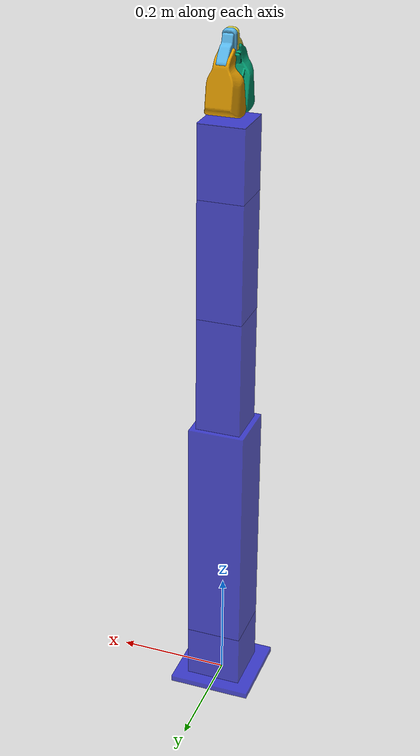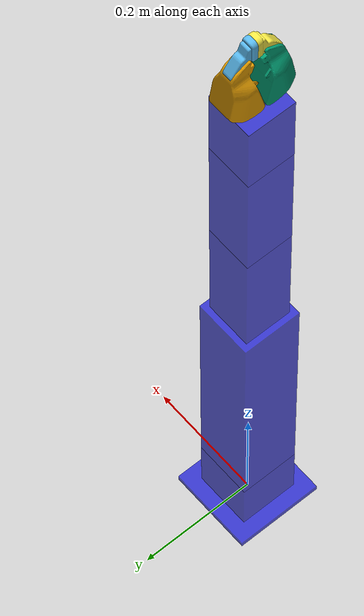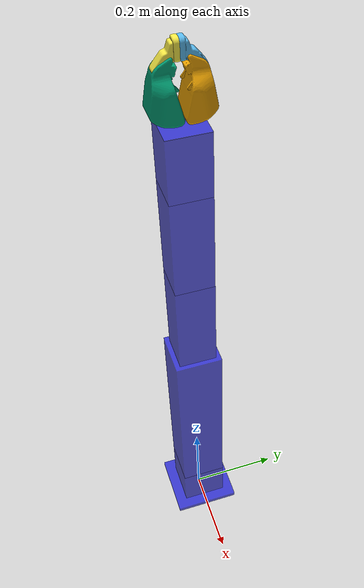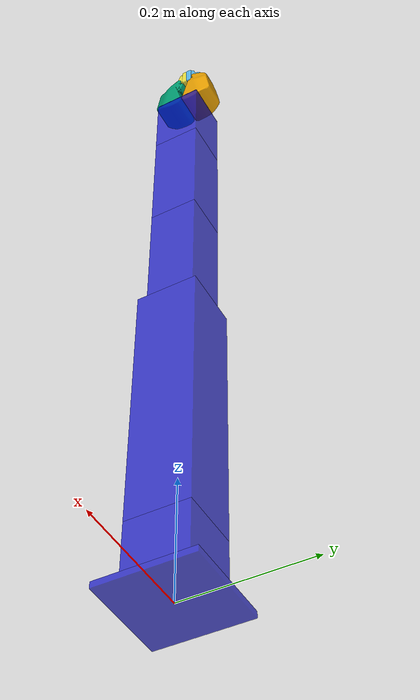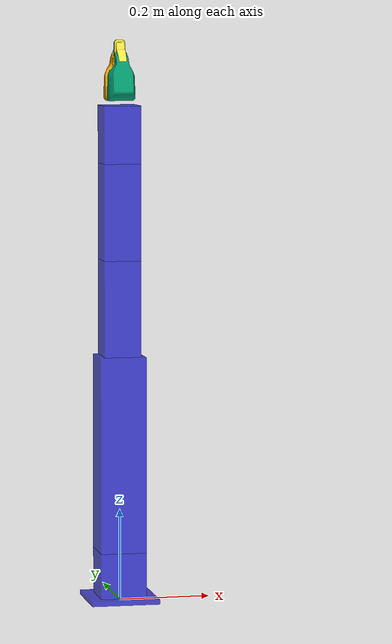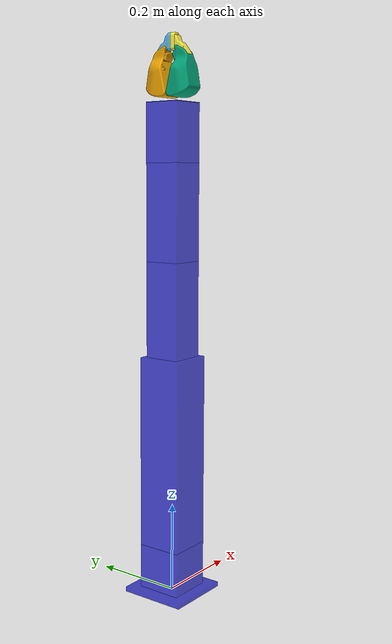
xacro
<?xml version="1.0" encoding="utf-8"?>
<robot xmlns:xacro="http://www.ros.org/wiki/xacro" name="frost">
  <xacro:include filename="$(find frost_robot_arm)/urdf/frost_arm.xacro"/>
  <xacro:include filename="$(find frost_robot_arm)/urdf/hand.xacro"/>
  <xacro:hand ns="frost_arm" right_xyz="0 0.01 0.02" left_xyz="0 -0.01 0.02" rpy="0 ${-pi/2} 0" connected_to="link_5"/>
</robot>

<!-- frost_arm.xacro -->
<robot name="frost" xmlns:xacro="http://www.ros.org/wiki/xacro">

  <material name="blue">
    <color rgba="0 0 0.8 0.7"/>
  </material>
  <material name="red">
    <color rgba="0.8 0 0 1"/>
  </material>

  <xacro:macro name="cube_inertial" params="width height depth mass *origin">
    <inertial>
      <mass value="${mass}" />
      <xacro:insert_block name="origin" />
      <inertia ixx="${0.0833333 * mass * (height * height + depth * depth)}" ixy="0.0" ixz="0.0"
        iyy="${0.0833333 * mass * (width * width + depth * depth)}" iyz="0.0"
        izz="${0.0833333 * mass * (width * width + height * height)}" />
    </inertial>
  </xacro:macro>

  <xacro:property name="link_base_mass" value="0.500" />
  <xacro:property name="link_0_mass" value="2.515" />
  <xacro:property name="link_1_mass" value="5.214" />
  <xacro:property name="link_2_mass" value="2.581" />
  <xacro:property name="link_3_mass" value="2.581" />
  <xacro:property name="link_4_mass" value="1.643" />
  <xacro:property name="link_5_mass" value="0.200" />

  <link name="world" />

  <joint name="world_joint" type="fixed">
    <parent link= "world" />
    <child link= "link_base" />
    <origin xyz="0.0 0.0 0.0" rpy="0.0 0.0 0.0" />
  </joint>

  <link name="link_base">
    <visual>
      <geometry>
	      <box size="0.15 0.15 0.01"/>
      </geometry>
      <origin rpy="0 0 0" xyz="0 0 0.005"/>
      <material name="blue"/>
    </visual>
    <collision>
      <geometry>
	      <box size="0.15 0.15 0.01"/>
      </geometry>
      <material name="red"/>
      <origin rpy="0 0 0" xyz="0 0 0.0025"/>
    </collision>
    <xacro:cube_inertial width="0.08" depth="0.08" height="0.001" mass="${link_base_mass}">
      <origin xyz="0.0 0.0 0.0" rpy="0 0 0" />
    </xacro:cube_inertial>
  </link>

  <link name="link_0">
    <visual>
      <geometry>
	      <box size="0.1 0.1 0.1"/>
      </geometry>
      <origin rpy="0 0 0" xyz="0 0 0.05"/>
      <material name="blue"/>
    </visual>
    <collision>
      <geometry>
	      <box size="0.1 0.1 0.1"/>
      </geometry>
      <material name="red"/>
      <origin rpy="0 0 0" xyz="0 0 0.05"/>
    </collision>
    <xacro:cube_inertial width="0.08" depth="0.08" height="0.001" mass="${link_0_mass}">
      <origin xyz="0.0 0.0 0.0" rpy="0 0 0" />
    </xacro:cube_inertial>
  </link>

  <joint name="joint0" type="revolute">
    <axis xyz="0 0 1"/>
    <origin rpy="0 0 0" xyz="0 0 0.01"/>
    <parent link="link_base"/>
    <child link="link_0"/>
    <limit effort="87" lower="-3.141592654" upper="3.141592654" velocity="2.1750"/>
    <inertial>
      <mass value="1.0"/>
      <inertia ixx="0.015" iyy="0.0375" izz="0.0375" ixy="0" ixz="0" iyz="0"/>
    </inertial>
  </joint>

  <link name="link_1">
    <visual>
      <geometry>
	      <box size="0.1 0.1 0.43"/>
      </geometry>
      <origin rpy="0 0 0" xyz="0 0 0.215"/>
      <material name="blue"/>
    </visual>
    <collision>
      <geometry>
	      <box size="0.1 0.1 0.35"/>
      </geometry>
      <material name="red"/>
      <origin rpy="0 0 0" xyz="0 0 0.215"/>
    </collision>
     <xacro:cube_inertial width="0.08" depth="0.08" height="0.001" mass="${link_1_mass}">
      <origin xyz="0.0 0.0 0.0" rpy="0 0 0" />
    </xacro:cube_inertial>
  </link>

  <joint name="joint1" type="revolute">
    <axis xyz="0 1 0"/>
    <parent link="link_0"/>
    <child link="link_1"/>
    <origin rpy="0 0 0" xyz="0 0 0.1"/>
    <limit effort="87" lower="-1.570796327" upper="1.570796327" velocity="2.1750"/>
    <inertial>
      <mass value="1.0"/>
      <inertia ixx="0.015" iyy="0.0375" izz="0.0375" ixy="0" ixz="0" iyz="0"/>
    </inertial>
  </joint>

  <link name="link_2">
    <visual>
      <geometry>
        <box size="0.08 0.08 0.21"/>
      </geometry>
      <origin rpy="0 0 0" xyz="0 0 0.105"/>
      <material name="blue"/>
    </visual>
    <collision>
      <geometry>
        <box size="0.08 0.08 0.21"/>
      </geometry>
      <origin rpy="0 0 0" xyz="0 0 0.105"/>
      <material name="red"/>
    </collision>
    <xacro:cube_inertial width="0.08" depth="0.08" height="0.21" mass="${link_2_mass}">
        <origin xyz="0.0 0.0 0.0" rpy="0 0 0" />
    </xacro:cube_inertial>
  </link>

  <joint name="joint2" type="revolute">
    <origin rpy="0 0 0" xyz="0 0 0.43"/>
    <parent link="link_1"/>
    <child link="link_2"/>
    <axis xyz="0 1 0"/>
    <limit effort="87" lower="-2.268928027593" upper="2.617993877991" velocity="2.1750"/>
    <inertial>
      <mass value="1.0"/>
      <inertia ixx="0.015" iyy="0.0375" izz="0.0375" ixy="0" ixz="0" iyz="0"/>
    </inertial>
  </joint>

  <link name="link_3">
    <visual>
      <geometry>
        <box size="0.08 0.08 0.21"/>
      </geometry>
      <origin rpy="0 0 0" xyz="0 0 0.105"/>
      <material name="blue"/>
    </visual>
    <collision>
      <geometry>
        <box size="0.08 0.08 0.09"/>
      </geometry>
      <origin rpy="0 0 0" xyz="0 0 0.105"/>
      <material name="red"/>
    </collision>
    <xacro:cube_inertial width="0.08" depth="0.08" height="0.09" mass="${link_3_mass}">
        <origin xyz="0.0 0.0 0.0" rpy="0 0 0" />
    </xacro:cube_inertial>
  </link>

  <joint name="joint3" type="revolute">
    <origin rpy="0 0 0" xyz="0.0 0.0 0.21"/>
    <parent link="link_2"/>
    <child link="link_3"/>
    <axis xyz="0 0 1"/>
    <limit effort="87" lower="-2.705260340591" upper="2.705260340591" velocity="2.1750"/>
    <inertial>
      <mass value="1.0"/>
      <inertia ixx="0.015" iyy="0.0375" izz="0.0375" ixy="0" ixz="0" iyz="0"/>
    </inertial>
  </joint>

  <link name="link_4">
    <visual>
      <geometry>
        <box size="0.08 0.08 0.125"/>
      </geometry>
      <origin rpy="0 0 0" xyz="0 0 0.0625"/>
      <material name="blue"/>
    </visual>
    <collision>
      <geometry>
        <box size="0.08 0.08 0.125"/>
      </geometry>
      <origin rpy="0 0 0" xyz="0 0 0.0625"/>
      <material name="red"/>
    </collision>
    <xacro:cube_inertial width="0.08" depth="0.08" height="0.125" mass="${link_4_mass}">
        <origin xyz="0.0 0.0 0.0" rpy="0 0 0" />
    </xacro:cube_inertial>
  </link>

  <joint name="joint4" type="revolute">
    <origin rpy="0 0 0" xyz="0 0.0 0.21"/>
    <parent link="link_3"/>
    <child link="link_4"/>
    <axis xyz="0 1 0"/>
    <limit effort="87" lower="-1.570796326795" upper="1.570796326795" velocity="2.1750"/>
    <inertial>
      <mass value="1.0"/>
      <inertia ixx="0.015" iyy="0.0375" izz="0.0375" ixy="0" ixz="0" iyz="0"/>
    </inertial>
  </joint>

  <link name="link_5">
    <visual>
      <geometry>
        <box size="0.08 0.08 0.001"/>
      </geometry>
      <origin rpy="0 0 0" xyz="0 0 0.0006"/>
      <material name="blue"/>
    </visual>
    <collision>
      <geometry>
        <box size="0.08 0.08 0"/>
      </geometry>
      <origin rpy="0 0 0" xyz="0 0 0.0006"/>
      <material name="red"/>
    </collision>
    <xacro:cube_inertial width="0.08" depth="0.08" height="0.001" mass="${link_5_mass}">
        <origin xyz="0.0 0.0 0.0" rpy="0 0 0" />
    </xacro:cube_inertial>
  </link>

  <joint name="joint5" type="revolute">
    <origin rpy="0 0 0" xyz="0 0 0.125"/>
    <parent link="link_4"/>
    <child link="link_5"/>
    <axis xyz="0 0 1"/>
    <limit effort="12" lower="-3.14159265359" upper="3.14159265359" velocity="2.6100"/>
    <inertial>
      <mass value="1.0"/>
      <inertia ixx="0.015" iyy="0.0375" izz="0.0375" ixy="0" ixz="0" iyz="0"/>
    </inertial>
  </joint>
</robot>

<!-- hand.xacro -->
<robot name="hand" xmlns:xacro="http://www.ros.org/wiki/xacro">

  <xacro:macro name="hand" params="connected_to:='' ns:='' rpy:='0 0 0' right_xyz:='0 0.01 0.02' left_xyz:='0 -0.01 0.02' ">

    <xacro:macro name="cube_inertial" params="width height depth mass *origin">
      <inertial>
        <mass value="${mass}" />
        <xacro:insert_block name="origin" />
        <inertia ixx="${0.0833333 * mass * (height * height + depth * depth)}" ixy="0.0" ixz="0.0"
          iyy="${0.0833333 * mass * (width * width + depth * depth)}" iyz="0.0"
          izz="${0.0833333 * mass * (width * width + height * height)}" />
      </inertial>
    </xacro:macro>

    <xacro:property name="left_gripper_mass" value="0.020" />
    <xacro:property name="left_tip_mass" value="0.001" />
    <xacro:property name="right_gripper_mass" value="0.020" />
    <xacro:property name="right_tip_mass" value="0.001" />

    <xacro:unless value="${connected_to == ''}">
      <joint name="left_gripper_joint" type="revolute">
        <axis xyz="0 0 1"/>
        <limit effort="1000.0" lower="0.0" upper="0.548" velocity="0.5"/>
        <origin rpy="${rpy}" xyz="${right_xyz}"/>
        <parent link="${connected_to}"/>
        <child link="left_gripper"/>
        <inertial>
          <mass value="1.0"/>
          <inertia ixx="0.015" iyy="0.0375" izz="0.0375" ixy="0" ixz="0" iyz="0"/>
        </inertial>
      </joint>
    </xacro:unless>

    <link name="left_gripper">
      <visual>
        <origin rpy="0.0 0 0" xyz="0 0 0"/>
        <geometry>
          <mesh filename="package://urdf_tutorial/meshes/l_finger.dae"/>
        </geometry>
      </visual>
      <collision>
        <origin rpy="0.0 0 0" xyz="0 0 0"/>
        <geometry>
            <mesh filename="package://urdf_tutorial/meshes/l_finger.dae"/>
        </geometry>
      </collision>
      <xacro:cube_inertial width="0.08" depth="0.08" height="0.001" mass="${link_base_mass}">
      <origin rpy="0.0 0 0" xyz="0 0 0"/>
    </xacro:cube_inertial>
    </link>

    <joint name="left_tip_joint" type="fixed">
      <parent link="left_gripper"/>
      <child link="left_tip"/>
      <inertial>
        <mass value="1.0"/>
        <inertia ixx="0.015" iyy="0.0375" izz="0.0375" ixy="0" ixz="0" iyz="0"/>
      </inertial>
    </joint>

    <link name="left_tip">
      <visual>
        <origin rpy="0.0 0 0" xyz="0.09137 0.00495 0"/>
        <geometry>
          <mesh filename="package://urdf_tutorial/meshes/l_finger_tip.dae"/>
        </geometry>
      </visual>
      <collision>
        <origin rpy="0.0 0 0" xyz="0.09137 0.00495 0"/>
        <geometry>
            <mesh filename="package://urdf_tutorial/meshes/l_finger_tip.dae"/>
        </geometry>
      </collision>
      <xacro:cube_inertial width="0.08" depth="0.08" height="0.001" mass="${link_base_mass}">
      <origin rpy="0.0 0 0" xyz="0.09137 0.00495 0" />
    </xacro:cube_inertial>
    </link>

    <xacro:unless value="${connected_to == ''}">
      <joint name="right_gripper_joint" type="revolute">
        <axis xyz="0 0 -1"/>
        <limit effort="1000.0" lower="0.0" upper="0.548" velocity="0.5"/>
        <origin rpy="${rpy}" xyz="${left_xyz}"/>
        <parent link="${connected_to}"/>
        <child link="right_gripper"/>
        <inertial>
          <mass value="1.0"/>
          <inertia ixx="0.015" iyy="0.0375" izz="0.0375" ixy="0" ixz="0" iyz="0"/>
        </inertial>
      </joint>
    </xacro:unless>

    <link name="right_gripper">
      <visual>
        <origin rpy="-3.1415 0 0" xyz="0 0 0"/>
        <geometry>
          <mesh filename="package://urdf_tutorial/meshes/l_finger.dae"/>
        </geometry>
      </visual>
      <collision>
        <origin rpy="-3.1415 0 0" xyz="0 0 0"/>
        <geometry>
            <mesh filename="package://urdf_tutorial/meshes/l_finger.dae"/>
        </geometry>
      </collision>
      <xacro:cube_inertial width="0.08" depth="0.08" height="0.001" mass="${link_base_mass}">
      <origin rpy="-3.1415 0 0" xyz="0 0 0" />
    </xacro:cube_inertial>
    </link>

    <joint name="right_tip_joint" type="fixed">
      <parent link="right_gripper"/>
      <child link="right_tip"/>
      <inertial>
        <mass value="1.0"/>
        <inertia ixx="0.015" iyy="0.0375" izz="0.0375" ixy="0" ixz="0" iyz="0"/>
      </inertial>
    </joint>

    <link name="right_tip">
      <visual>
        <origin rpy="-3.1415 0 0" xyz="0.09137 -0.00495 0"/>
        <geometry>
          <mesh filename="package://urdf_tutorial/meshes/l_finger_tip.dae"/>
        </geometry>
      </visual>
      <collision>
        <origin rpy="-3.1415 0 0" xyz="0.09137 -0.00495 0"/>
        <geometry>
            <mesh filename="package://urdf_tutorial/meshes/l_finger_tip.dae"/>
        </geometry>
      </collision>
      <xacro:cube_inertial width="0.08" depth="0.08" height="0.001" mass="${link_base_mass}">
      <origin rpy="-3.1415 0 0" xyz="0.09137 -0.00495 0" />
    </xacro:cube_inertial>
    </link>

  </xacro:macro>
</robot>
